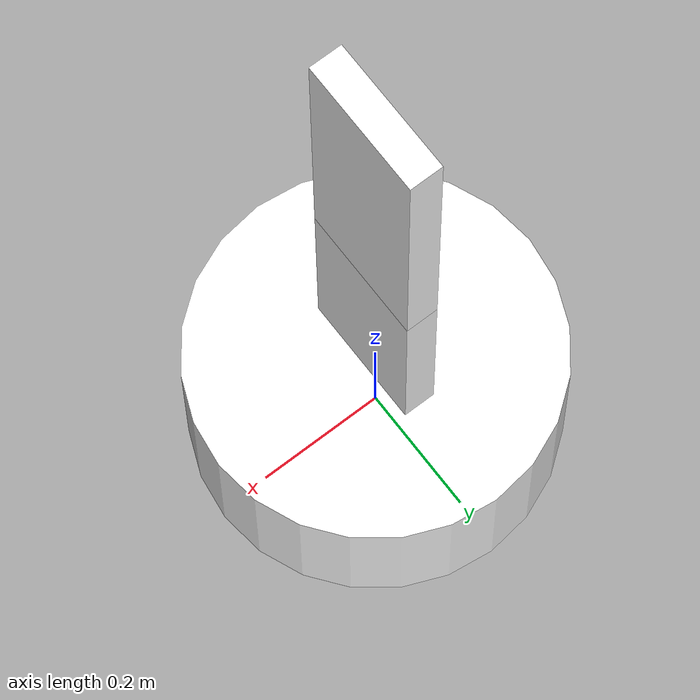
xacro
<?xml version="1.0"?>
<robot xmlns:xacro="http://www.ros.org/wiki/xacro" >

    <xacro:include filename="inertial_macros.xacro"/>
    <xacro:include filename='ros2_control.xacro'/>

    <material name="white">
        <color rgba="1 1 1 1"/>
    </material>
    <material name="blue">
        <color rgba="0.2 0.2 1 1"/>
    </material>
    <material name="black">
        <color rgba="0 0 0 1"/>
    </material>
    <material name="red">
        <color rgba="1 0 0 1"/>
    </material>
    <material name="grey">
        <color rgba="0.5 0.5 0.5 1"/>
    </material>
    <material name="green">
        <color rgba="0 1 0 1"/>
        <friction value='5.0'/>
    </material>

    <!--BASE LINK-->
    <link name="base_link">
    </link>

    <!--BASE FOOTPRINT-->
    <joint name="base_footprint_joint" type="fixed">
        <parent link="base_link"/>
        <child link="base_footprint"/>
        <origin xyz="0 0 0" rpy="0 0 0"/>
    </joint>

    <link name="base_footprint">
    </link>

    <!--CHASSI-->
    <joint name="chassi_joint" type="fixed">
        <parent link="base_link"/>
        <child link="chassi_link"/>
        <origin xyz="0 0 0.082" rpy="0 0 0"/>
    </joint>

    <link name="chassi_link">
        <visual>
            <origin xyz="0 0 0"/>
            <geometry>
                <cylinder radius="0.275" length="0.25"/>
            </geometry>
            <material name="white"/>
        </visual>
        <collision>
            <origin xyz="0 0 0"/>
            <geometry>
                <cylinder radius="0.275" length="0.25"/>
            </geometry>
        </collision>
        <xacro:inertial_cylinder mass="100.0" length="0.25" radius="0.275">
            <origin xyz="0 0 0" rpy="0 0 0"/>
        </xacro:inertial_cylinder>
    </link>

    <gazebo reference="chassi_link">
        <material>Gazebo/White</material>
    </gazebo>

    <!--LOWER BODY-->
    <joint name="lower_body_joint" type="fixed">
        <parent link="base_link"/>
        <child link="lower_body_link"/>
        <origin xyz="0 0 0.2" rpy="0 0 0"/>
    </joint>

    <link name="lower_body_link">
        <visual>
            <origin xyz="0 0 0.18" rpy="0 0 ${pi/2}"/>
            <geometry>
                <box size="0.2 0.05 0.35"/>
            </geometry>
            <material name="white"/>
        </visual>
        <collision>
            <origin xyz="0 0 0.18" rpy="0 0 ${pi/2}"/>
            <geometry>
                <box size="0.2 0.05 0.35"/>
            </geometry>
        </collision>
        <xacro:inertial_box mass="0.1" x="0.2" y="0.05" z="0.35">
            <origin xyz="0 0 0.18" rpy="0 0 0"/>
        </xacro:inertial_box>
    </link>

    <gazebo reference="lower_body_link">
        <material>Gazebo/White</material>
    </gazebo>

    <!--UPPER BODY-->
    <joint name="upper_body_joint" type="fixed">
        <parent link="lower_body_link"/>
        <child link="upper_body_link"/>
        <origin xyz="0 0 0.355" rpy="0 0 0"/>
    </joint>

    <link name="upper_body_link">
        <visual>
            <origin xyz="0 0 0.25" rpy="0 0 ${pi/2}"/>
            <geometry>
                <box size="0.2 0.05 0.50"/>
            </geometry>
            <material name="white"/>
        </visual>
        <collision>
            <origin xyz="0 0 0.25" rpy="0 0 ${pi/2}"/>
            <geometry>
                <box size="0.2 0.05 0.50"/>
            </geometry>
        </collision>
        <xacro:inertial_box mass="0.03" x="0.2" y="0.05" z="0.50">
            <origin xyz="0 0 0.25" rpy="0 0 0"/>
        </xacro:inertial_box>
    </link>

    <gazebo reference="upper_body_link">
        <material>Gazebo/White</material>
    </gazebo>

</robot>
